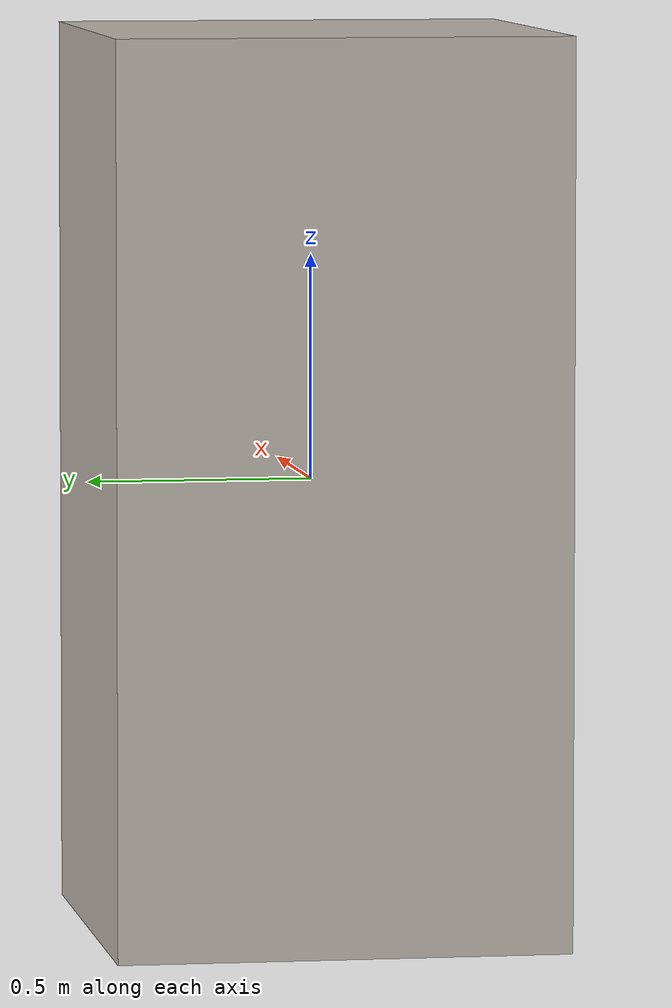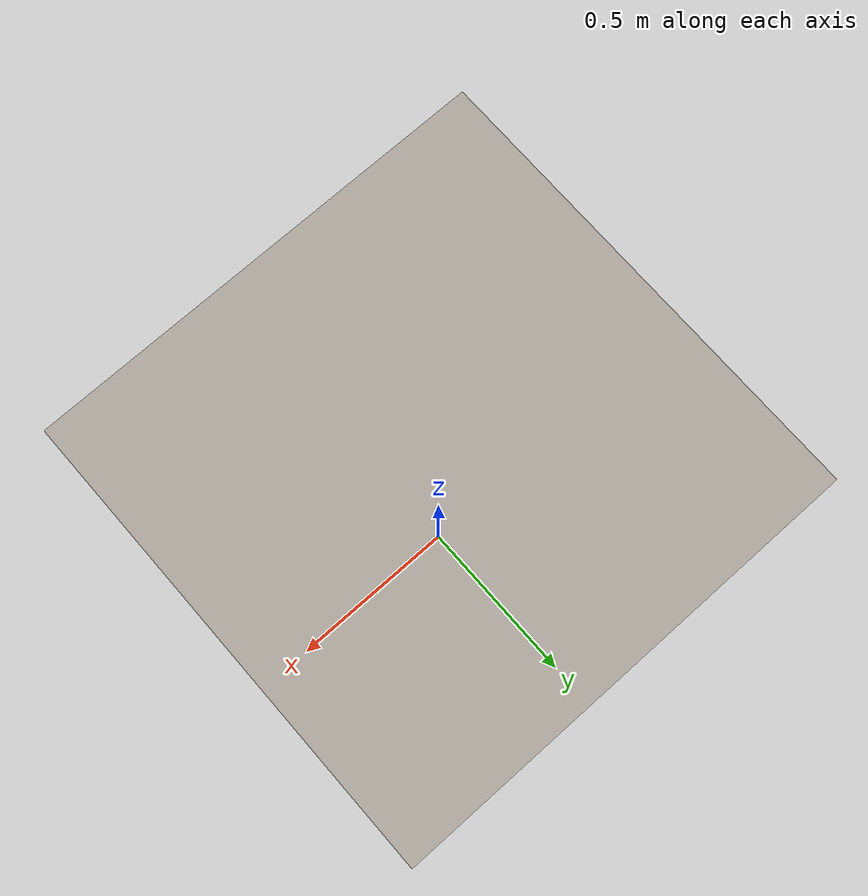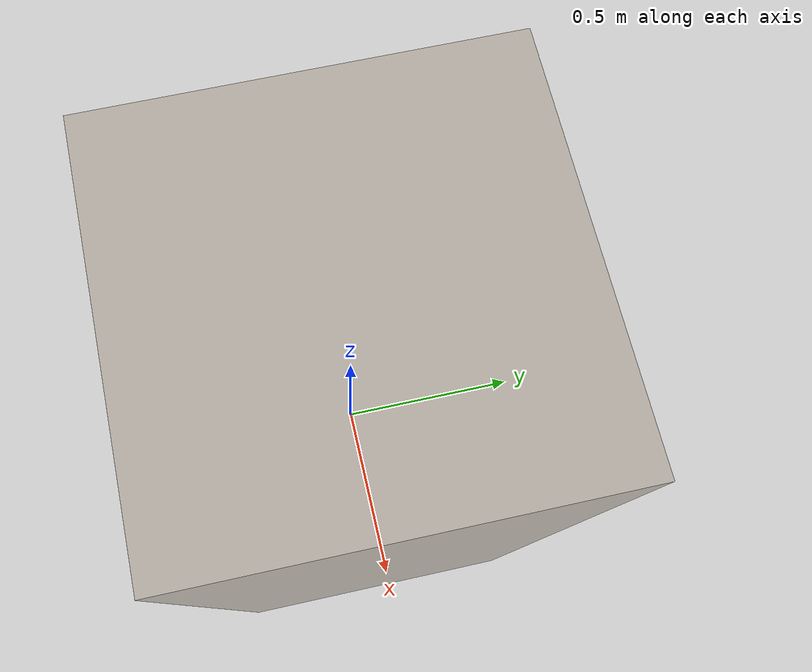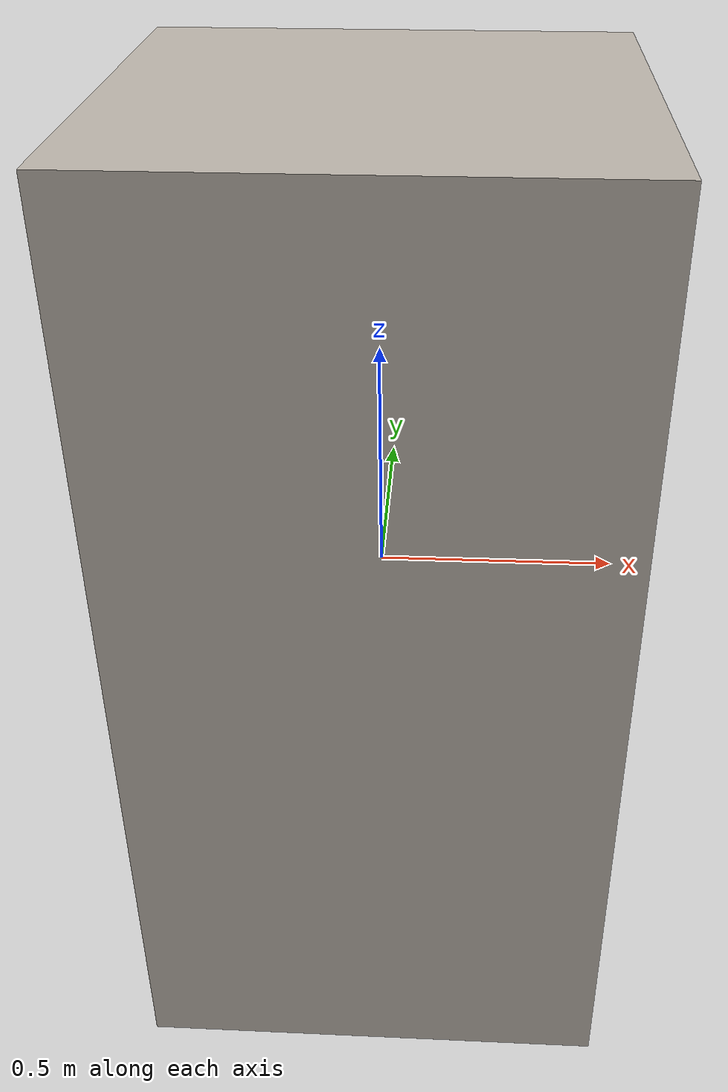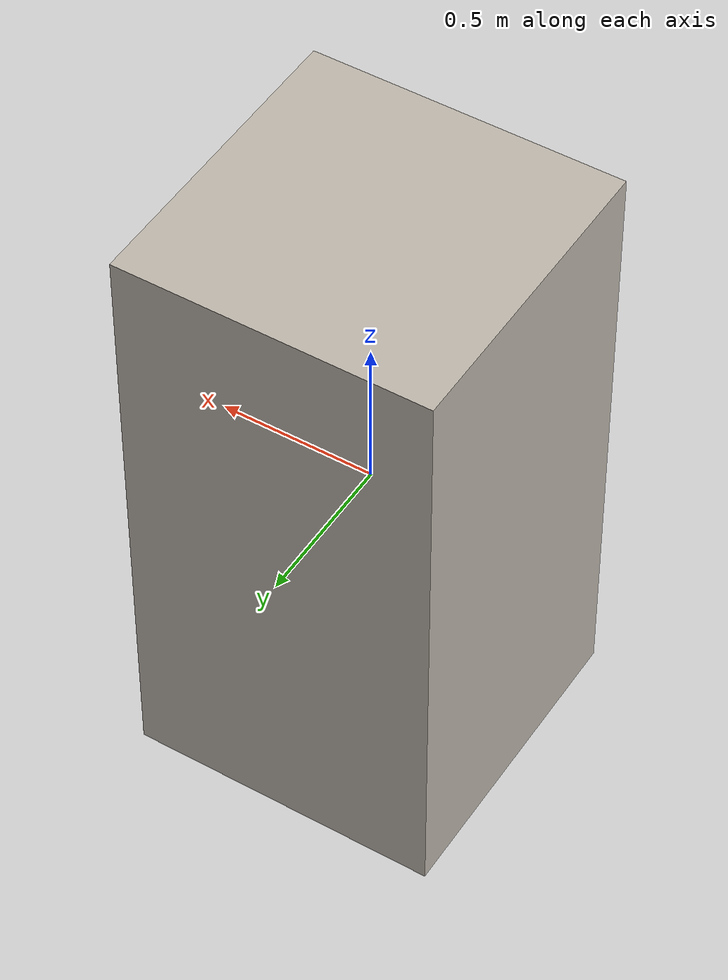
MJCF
<mujoco model="counter">
  <asset>
    <texture file="visuals/marble.png" type="2d" name="tex_top_2d"/>
    <texture file="visuals/marble.png" type="cube" name="tex_base"/>
    <material name="counter_top" reflectance="0.1" shininess="0.1" texrepeat="3 3" texuniform="true" texture="tex_top_2d"/>
    <material name="counter_base" reflectance="0.1" shininess="0.1" texture="tex_base"/>
  </asset>
  <default>
    <default class="counter">
      <geom group="0" density="10"/>
    </default>
  </default>
  <worldbody>
    <body>
      <body name="object">
        <!-- All sizes and positions are programatically generated -->
        <geom pos="0.0 0 0" size="0.50 0.50 1.0" type="box" material="counter_base" name="base_right" class="counter"/>
        <geom pos="0.0 0 0" size="0.50 0.50 1.0" type="box" material="counter_base" name="base_left" class="counter"/>
        <geom pos="0.0 0 0" size="0.50 0.50 1.0" type="box" material="counter_base" name="base_back" class="counter"/>
        <geom pos="0.0 0 0" size="0.50 0.50 1.0" type="box" material="counter_base" name="base_front" class="counter"/>
        <!-- exterior bounding box points -->
        <site rgba="0 0 0 1" size="0.01" pos="0 0 0" name="ext_p0"/>
        <site rgba="1 0 0 1" size="0.01" pos="0 0 0" name="ext_px"/>
        <site rgba="0 1 0 1" size="0.01" pos="0 0 0" name="ext_py"/>
        <site rgba="0 0 1 1" size="0.01" pos="0 0 0" name="ext_pz"/>
        <!-- interior bounding box points -->
        <site rgba="0.5 0.5 0.5 1" size="0.01" pos="0 0 0" name="int_p0"/>
        <site rgba="1 1 0 1" size="0.01" pos="0 0 0" name="int_px"/>
        <site rgba="0 1 1 1" size="0.01" pos="0 0 0" name="int_py"/>
        <site rgba="1 0 1 1" size="0.01" pos="0 0 0" name="int_pz"/>
      </body>
    </body>
  </worldbody>
</mujoco>
